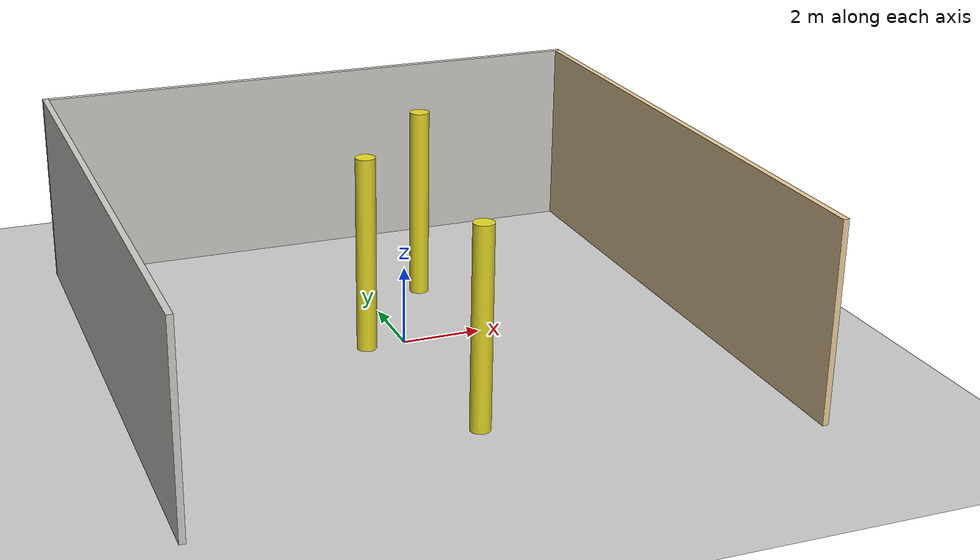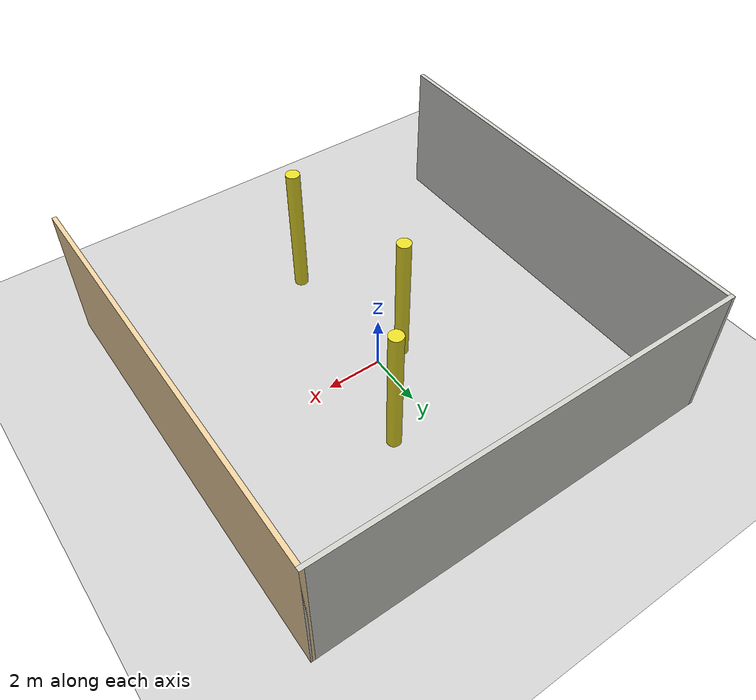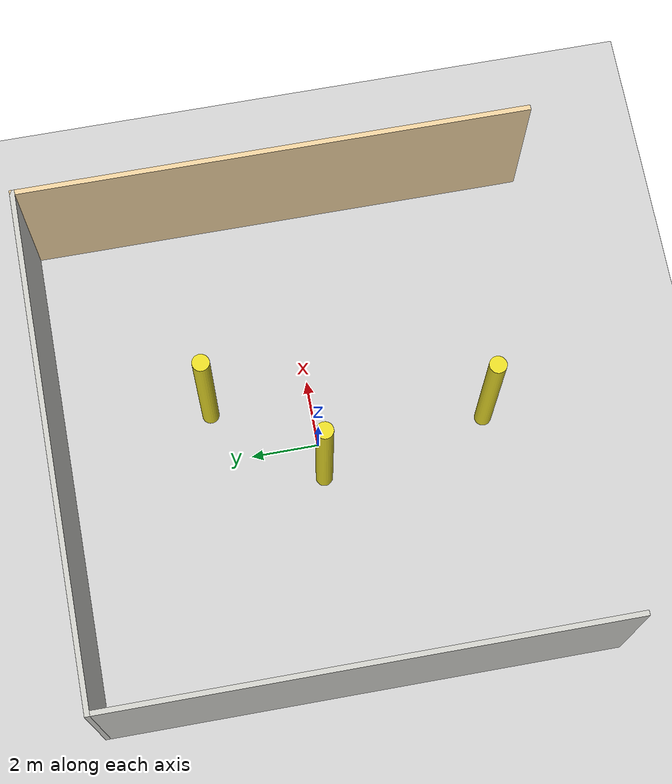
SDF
<sdf version="1.6">
 <world name="default">
  <plugin name="gazebo_octomap" filename="librotors_gazebo_octomap_plugin.so"/>
  <plugin name="ned_conversions" filename="libned_conv.so"/>
  <plugin name="wind_plugin" filename="libwind_plugin.so"/>
  <model name="ground_plane">
   <static>1</static>
   <link name="link">
    <collision name="collision">
     <geometry><plane><normal>0 0 1</normal><size>100 100</size></plane></geometry>
     <surface>
      <contact><collide_bitmask>65535</collide_bitmask></contact>
      <friction><ode><mu>100</mu><mu2>50</mu2></ode></friction>
     </surface>
    </collision>
    <visual name="visual">
     <cast_shadows>0</cast_shadows>
     <geometry><plane><normal>0 0 1</normal><size>100 100</size></plane></geometry>
     <material>
      <script><uri>file://media/materials/scripts/gazebo.material</uri><name>Gazebo/Grey</name></script>
     </material>
    </visual>
   </link>
  </model>
  <light name="sun" type="directional">
   <pose>0 0 10 0 -0 0</pose>
   <diffuse>0.8 0.8 0.8 1</diffuse>
   <specular>0.2 0.2 0.2 1</specular>
   <attenuation>
    <range>1000</range>
    <constant>0.9</constant>
    <linear>0.01</linear>
    <quadratic>0.001</quadratic>
   </attenuation>
   <direction>-0.5 0.1 -0.9</direction>
  </light>
  <plugin name="ros_interface_plugin" filename="librotors_gazebo_ros_interface_plugin.so"/>
  <spherical_coordinates>
   <surface_model>EARTH_WGS84</surface_model>
   <latitude_deg>47.3667</latitude_deg>
   <longitude_deg>8.55</longitude_deg>
   <elevation>500</elevation>
   <heading_deg>0</heading_deg>
  </spherical_coordinates>
  <physics name="default_physics" default="0" type="ode">
   <ode>
    <solver>
     <type>quick</type>
     <iters>1000</iters>
     <sor>1.3</sor>
     <use_dynamic_moi_rescaling>0</use_dynamic_moi_rescaling>
    </solver>
    <constraints>
     <cfm>0</cfm>
     <erp>0.2</erp>
     <contact_max_correcting_vel>100</contact_max_correcting_vel>
     <contact_surface_layer>0.001</contact_surface_layer>
    </constraints>
   </ode>
   <max_step_size>0.001</max_step_size>
   <real_time_factor>1</real_time_factor>
   <real_time_update_rate>1000</real_time_update_rate>
  </physics>
  <gravity>0 0 -9.8</gravity>
  <magnetic_field>6e-06 2.3e-05 -4.2e-05</magnetic_field>
  <atmosphere type="adiabatic"/>
  <scene><ambient>0.4 0.4 0.4 1</ambient><background>0.7 0.7 0.7 1</background><shadows>0</shadows></scene>
  <audio><device>default</device></audio>
  <model name="Room_walls">
   <link name="Wall_16">
    <pose>0 7.425 0 0 -0 0</pose>
    <inertial>
     <mass>1</mass>
     <inertia><ixx>1</ixx><ixy>0</ixy><ixz>0</ixz><iyy>1</iyy><iyz>0</iyz><izz>1</izz></inertia>
    </inertial>
    <visual name="Wall_16_Visual">
     <pose>0 0 1.25 0 -0 0</pose>
     <geometry><box><size>15 0.15 5</size></box></geometry>
     <material>
      <script><uri>file://media/materials/scripts/gazebo.material</uri><name>Gazebo/CeilingTiled</name></script>
      <ambient>0.922 0.808 0.616 1</ambient>
      <shader type="vertex"><normal_map>__default__</normal_map></shader>
      <diffuse>1 1 1 1</diffuse>
      <specular>0 0 0 1</specular>
      <emissive>0 0 0 1</emissive>
     </material>
     <meta><layer>0</layer></meta>
    </visual>
    <collision name="Wall_16_Collision">
     <pose>0 0 1.25 0 -0 0</pose>
     <geometry><box><size>15 0.15 5</size></box></geometry>
     <surface>
      <friction>
       <ode><mu>1</mu><mu2>1</mu2><fdir1>0 0 0</fdir1><slip1>0</slip1><slip2>0</slip2></ode>
       <torsional>
        <coefficient>1</coefficient>
        <patch_radius>0</patch_radius>
        <surface_radius>0</surface_radius>
        <use_patch_radius>1</use_patch_radius>
        <ode><slip>0</slip></ode>
       </torsional>
      </friction>
      <bounce><restitution_coefficient>0</restitution_coefficient><threshold>1e+06</threshold></bounce>
      <contact>
       <collide_without_contact>0</collide_without_contact>
       <collide_without_contact_bitmask>1</collide_without_contact_bitmask>
       <collide_bitmask>1</collide_bitmask>
       <ode>
        <soft_cfm>0</soft_cfm>
        <soft_erp>0.2</soft_erp>
        <kp>1e+13</kp>
        <kd>1</kd>
        <max_vel>0.01</max_vel>
        <min_depth>0</min_depth>
       </ode>
       <bullet>
        <split_impulse>1</split_impulse>
        <split_impulse_penetration_threshold>-0.01</split_impulse_penetration_threshold>
        <soft_cfm>0</soft_cfm>
        <soft_erp>0.2</soft_erp>
        <kp>1e+13</kp>
        <kd>1</kd>
       </bullet>
      </contact>
     </surface>
    </collision>
   </link>
   <link name="Wall_18">
    <pose>-7.425 0 0 0 0 -1.5708</pose>
    <inertial>
     <mass>1</mass>
     <inertia><ixx>1</ixx><ixy>0</ixy><ixz>0</ixz><iyy>1</iyy><iyz>0</iyz><izz>1</izz></inertia>
    </inertial>
    <visual name="Wall_18_Visual">
     <pose>0 0 1.25 0 -0 0</pose>
     <geometry><box><size>15 0.15 5</size></box></geometry>
     <material>
      <script><uri>file://media/materials/scripts/gazebo.material</uri><name>Gazebo/CeilingTiled</name></script>
      <ambient>0.922 0.808 0.616 1</ambient>
      <shader type="vertex"><normal_map>__default__</normal_map></shader>
      <diffuse>1 1 1 1</diffuse>
      <specular>0 0 0 1</specular>
      <emissive>0 0 0 1</emissive>
     </material>
     <meta><layer>0</layer></meta>
    </visual>
    <collision name="Wall_18_Collision">
     <pose>0 0 1.25 0 -0 0</pose>
     <geometry><box><size>15 0.15 5</size></box></geometry>
     <surface>
      <friction>
       <ode><mu>1</mu><mu2>1</mu2><fdir1>0 0 0</fdir1><slip1>0</slip1><slip2>0</slip2></ode>
       <torsional>
        <coefficient>1</coefficient>
        <patch_radius>0</patch_radius>
        <surface_radius>0</surface_radius>
        <use_patch_radius>1</use_patch_radius>
        <ode><slip>0</slip></ode>
       </torsional>
      </friction>
      <bounce><restitution_coefficient>0</restitution_coefficient><threshold>1e+06</threshold></bounce>
      <contact>
       <collide_without_contact>0</collide_without_contact>
       <collide_without_contact_bitmask>1</collide_without_contact_bitmask>
       <collide_bitmask>1</collide_bitmask>
       <ode>
        <soft_cfm>0</soft_cfm>
        <soft_erp>0.2</soft_erp>
        <kp>1e+13</kp>
        <kd>1</kd>
        <max_vel>0.01</max_vel>
        <min_depth>0</min_depth>
       </ode>
       <bullet>
        <split_impulse>1</split_impulse>
        <split_impulse_penetration_threshold>-0.01</split_impulse_penetration_threshold>
        <soft_cfm>0</soft_cfm>
        <soft_erp>0.2</soft_erp>
        <kp>1e+13</kp>
        <kd>1</kd>
       </bullet>
      </contact>
     </surface>
    </collision>
   </link>
   <link name="Wall_21">
    <pose>7.425 0 0 0 0 -1.5708</pose>
    <inertial>
     <mass>1</mass>
     <inertia><ixx>1</ixx><ixy>0</ixy><ixz>0</ixz><iyy>1</iyy><iyz>0</iyz><izz>1</izz></inertia>
    </inertial>
    <visual name="Wall_21_Visual">
     <pose>0 0 1.25 0 -0 0</pose>
     <geometry><box><size>15 0.15 5</size></box></geometry>
     <material>
      <script><uri>file://media/materials/scripts/gazebo.material</uri><name>Gazebo/Grey</name></script>
      <ambient>0.922 0.808 0.616 1</ambient>
      <shader type="vertex"><normal_map>__default__</normal_map></shader>
      <diffuse>0.7 0.7 0.7 1</diffuse>
      <specular>0.01 0.01 0.01 1</specular>
      <emissive>0 0 0 1</emissive>
     </material>
     <meta><layer>0</layer></meta>
    </visual>
    <collision name="Wall_21_Collision">
     <pose>0 0 1.25 0 -0 0</pose>
     <geometry><box><size>15 0.15 5</size></box></geometry>
     <surface>
      <friction>
       <ode><mu>1</mu><mu2>1</mu2><fdir1>0 0 0</fdir1><slip1>0</slip1><slip2>0</slip2></ode>
       <torsional>
        <coefficient>1</coefficient>
        <patch_radius>0</patch_radius>
        <surface_radius>0</surface_radius>
        <use_patch_radius>1</use_patch_radius>
        <ode><slip>0</slip></ode>
       </torsional>
      </friction>
      <bounce><restitution_coefficient>0</restitution_coefficient><threshold>1e+06</threshold></bounce>
      <contact>
       <collide_without_contact>0</collide_without_contact>
       <collide_without_contact_bitmask>1</collide_without_contact_bitmask>
       <collide_bitmask>1</collide_bitmask>
       <ode>
        <soft_cfm>0</soft_cfm>
        <soft_erp>0.2</soft_erp>
        <kp>1e+13</kp>
        <kd>1</kd>
        <max_vel>0.01</max_vel>
        <min_depth>0</min_depth>
       </ode>
       <bullet>
        <split_impulse>1</split_impulse>
        <split_impulse_penetration_threshold>-0.01</split_impulse_penetration_threshold>
        <soft_cfm>0</soft_cfm>
        <soft_erp>0.2</soft_erp>
        <kp>1e+13</kp>
        <kd>1</kd>
       </bullet>
      </contact>
     </surface>
    </collision>
   </link>
   <static>1</static>
   <pose>0 0 1.255 0 -0 0</pose>
  </model>
  <model name="unit_cylinder">
   <link name="link">
    <inertial>
     <mass>1</mass>
     <inertia><ixx>0.145833</ixx><ixy>0</ixy><ixz>0</ixz><iyy>0.145833</iyy><iyz>0</iyz><izz>0.125</izz></inertia>
    </inertial>
    <pose>0 0 1.94836 0 -0 0</pose>
    <visual name="visual">
     <geometry><cylinder><radius>0.25</radius><length>5</length></cylinder></geometry>
     <material>
      <script><name>Gazebo/Yellow</name><uri>file://media/materials/scripts/gazebo.material</uri></script>
      <shader type="vertex"><normal_map>__default__</normal_map></shader>
      <ambient>0.8 0.8 0.2 1</ambient>
      <diffuse>1 1 0.5 1</diffuse>
      <specular>0.01 0.01 0.01 1</specular>
      <emissive>0 0 0 1</emissive>
     </material>
    </visual>
    <collision name="collision">
     <geometry><cylinder><radius>0.25</radius><length>5</length></cylinder></geometry>
     <surface>
      <friction>
       <ode><mu>1</mu><mu2>1</mu2><fdir1>0 0 0</fdir1><slip1>0</slip1><slip2>0</slip2></ode>
       <torsional>
        <coefficient>1</coefficient>
        <patch_radius>0</patch_radius>
        <surface_radius>0</surface_radius>
        <use_patch_radius>1</use_patch_radius>
        <ode><slip>0</slip></ode>
       </torsional>
      </friction>
      <bounce><restitution_coefficient>0</restitution_coefficient><threshold>1e+06</threshold></bounce>
      <contact>
       <collide_without_contact>0</collide_without_contact>
       <collide_without_contact_bitmask>1</collide_without_contact_bitmask>
       <collide_bitmask>1</collide_bitmask>
       <ode>
        <soft_cfm>0</soft_cfm>
        <soft_erp>0.2</soft_erp>
        <kp>1e+13</kp>
        <kd>1</kd>
        <max_vel>0.01</max_vel>
        <min_depth>0</min_depth>
       </ode>
       <bullet>
        <split_impulse>1</split_impulse>
        <split_impulse_penetration_threshold>-0.01</split_impulse_penetration_threshold>
        <soft_cfm>0</soft_cfm>
        <soft_erp>0.2</soft_erp>
        <kp>1e+13</kp>
        <kd>1</kd>
       </bullet>
      </contact>
     </surface>
    </collision>
   </link>
   <static>1</static>
   <pose>1.5 3 0.55664 0 -0 0</pose>
  </model>
  <model name="unit_cylinder_clone">
   <link name="link">
    <inertial>
     <mass>1</mass>
     <inertia><ixx>0.145833</ixx><ixy>0</ixy><ixz>0</ixz><iyy>0.145833</iyy><iyz>0</iyz><izz>0.125</izz></inertia>
    </inertial>
    <pose>0 0 1.94836 0 -0 0</pose>
    <visual name="visual">
     <geometry><cylinder><radius>0.25</radius><length>5</length></cylinder></geometry>
     <material>
      <script><name>Gazebo/Yellow</name><uri>file://media/materials/scripts/gazebo.material</uri></script>
      <shader type="vertex"><normal_map>__default__</normal_map></shader>
      <ambient>0.8 0.8 0.2 1</ambient>
      <diffuse>1 1 0.5 1</diffuse>
      <specular>0.01 0.01 0.01 1</specular>
      <emissive>0 0 0 1</emissive>
     </material>
    </visual>
    <collision name="collision">
     <geometry><cylinder><radius>0.25</radius><length>5</length></cylinder></geometry>
     <surface>
      <friction>
       <ode><mu>1</mu><mu2>1</mu2><fdir1>0 0 0</fdir1><slip1>0</slip1><slip2>0</slip2></ode>
       <torsional>
        <coefficient>1</coefficient>
        <patch_radius>0</patch_radius>
        <surface_radius>0</surface_radius>
        <use_patch_radius>1</use_patch_radius>
        <ode><slip>0</slip></ode>
       </torsional>
      </friction>
      <bounce><restitution_coefficient>0</restitution_coefficient><threshold>1e+06</threshold></bounce>
      <contact>
       <collide_without_contact>0</collide_without_contact>
       <collide_without_contact_bitmask>1</collide_without_contact_bitmask>
       <collide_bitmask>1</collide_bitmask>
       <ode>
        <soft_cfm>0</soft_cfm>
        <soft_erp>0.2</soft_erp>
        <kp>1e+13</kp>
        <kd>1</kd>
        <max_vel>0.01</max_vel>
        <min_depth>0</min_depth>
       </ode>
       <bullet>
        <split_impulse>1</split_impulse>
        <split_impulse_penetration_threshold>-0.01</split_impulse_penetration_threshold>
        <soft_cfm>0</soft_cfm>
        <soft_erp>0.2</soft_erp>
        <kp>1e+13</kp>
        <kd>1</kd>
       </bullet>
      </contact>
     </surface>
    </collision>
   </link>
   <static>1</static>
   <pose>0 -5 0.55664 0 -0 0</pose>
  </model>
  <model name="unit_cylinder_clone_0">
   <link name="link">
    <inertial>
     <mass>1</mass>
     <inertia><ixx>0.145833</ixx><ixy>0</ixy><ixz>0</ixz><iyy>0.145833</iyy><iyz>0</iyz><izz>0.125</izz></inertia>
    </inertial>
    <pose>0 0 1.94836 0 -0 0</pose>
    <visual name="visual">
     <geometry><cylinder><radius>0.25</radius><length>5</length></cylinder></geometry>
     <material>
      <script><name>Gazebo/Yellow</name><uri>file://media/materials/scripts/gazebo.material</uri></script>
      <shader type="vertex"><normal_map>__default__</normal_map></shader>
      <ambient>0.8 0.8 0.2 1</ambient>
      <diffuse>1 1 0.5 1</diffuse>
      <specular>0.01 0.01 0.01 1</specular>
      <emissive>0 0 0 1</emissive>
     </material>
    </visual>
    <collision name="collision">
     <geometry><cylinder><radius>0.25</radius><length>5</length></cylinder></geometry>
     <surface>
      <friction>
       <ode><mu>1</mu><mu2>1</mu2><fdir1>0 0 0</fdir1><slip1>0</slip1><slip2>0</slip2></ode>
       <torsional>
        <coefficient>1</coefficient>
        <patch_radius>0</patch_radius>
        <surface_radius>0</surface_radius>
        <use_patch_radius>1</use_patch_radius>
        <ode><slip>0</slip></ode>
       </torsional>
      </friction>
      <bounce><restitution_coefficient>0</restitution_coefficient><threshold>1e+06</threshold></bounce>
      <contact>
       <collide_without_contact>0</collide_without_contact>
       <collide_without_contact_bitmask>1</collide_without_contact_bitmask>
       <collide_bitmask>1</collide_bitmask>
       <ode>
        <soft_cfm>0</soft_cfm>
        <soft_erp>0.2</soft_erp>
        <kp>1e+13</kp>
        <kd>1</kd>
        <max_vel>0.01</max_vel>
        <min_depth>0</min_depth>
       </ode>
       <bullet>
        <split_impulse>1</split_impulse>
        <split_impulse_penetration_threshold>-0.01</split_impulse_penetration_threshold>
        <soft_cfm>0</soft_cfm>
        <soft_erp>0.2</soft_erp>
        <kp>1e+13</kp>
        <kd>1</kd>
       </bullet>
      </contact>
     </surface>
    </collision>
   </link>
   <static>1</static>
   <pose>-1 0 0.55664 0 -0 0</pose>
  </model>
 </world>
</sdf>
